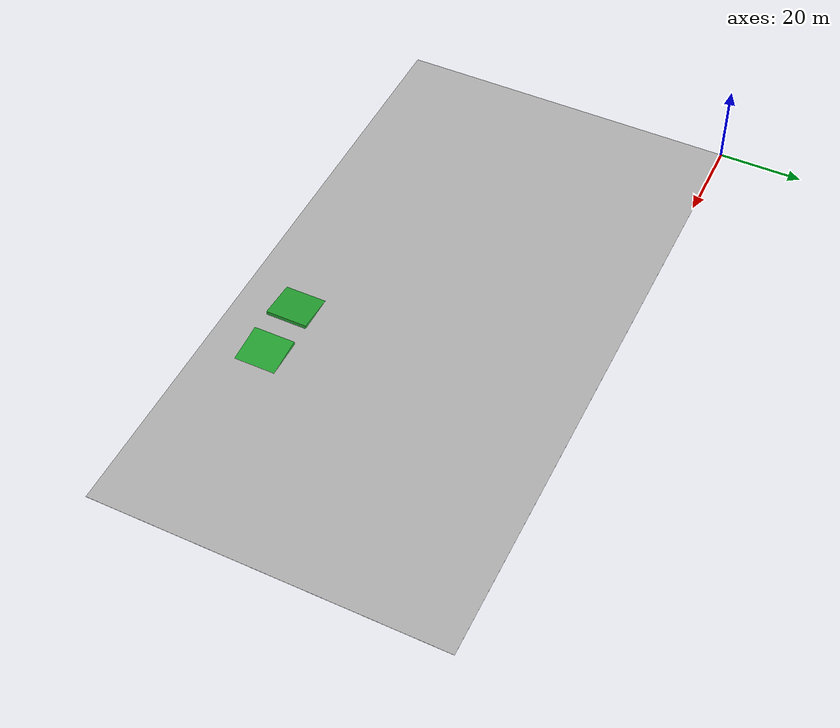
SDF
<sdf version="1.5">
 <world name="default">
  <model name="ground">
   <pose>75 -41.8 0 0 0 1.57</pose>
   <static>1</static>
   <link name="ground">
    <collision name="ground_coll"><geometry><box><size>83.6 150 0.05</size></box></geometry></collision>
    <visual name="ground_vis">
     <geometry><box><size>83.6 150 0.05</size></box></geometry>
     <material><script><uri>./course.material</uri><name>course</name></script></material>
    </visual>
   </link>
  </model>
  <include><uri>model://sun</uri></include>
  <model name="ground">
   <pose>75 -41.8 0 0 0 1.57</pose>
   <static>1</static>
   <link name="ground">
    <collision name="ground_coll"><geometry><box><size>83.6 150 0.05</size></box></geometry></collision>
    <visual name="ground_vis">
     <geometry><box><size>83.6 150 0.05</size></box></geometry>
     <material><script><uri>./course.material</uri><name>course</name></script></material>
    </visual>
   </link>
  </model>
  <model name="up_road">
   <pose>87.5 -70.0 -4.55 0.0 -0.1 0.0</pose>
   <static>1</static>
   <link name="link">
    <collision name="collision"><geometry><box><size>10 10 10</size></box></geometry></collision>
    <visual name="visual">
     <geometry><box><size>10 10 10</size></box></geometry>
     <material>
      <script><uri>file://media/materials/scripts/gazebo.material</uri><name>Gazebo/Green</name></script>
     </material>
    </visual>
   </link>
  </model>
  <model name="down_road">
   <pose>101.5 -70.0 -4.55 0 0.1 0</pose>
   <static>1</static>
   <link name="link">
    <collision name="collision"><geometry><box><size>10 10 10</size></box></geometry></collision>
    <visual name="visual">
     <geometry><box><size>10 10 10</size></box></geometry>
     <material>
      <script><uri>file://media/materials/scripts/gazebo.material</uri><name>Gazebo/Green</name></script>
     </material>
    </visual>
   </link>
  </model>
  <model name="up_road">
   <pose>87.5 -70.0 -4.55 0.0 -0.1 0.0</pose>
   <static>1</static>
   <link name="link">
    <collision name="collision"><geometry><box><size>10 10 10</size></box></geometry></collision>
    <visual name="visual">
     <geometry><box><size>10 10 10</size></box></geometry>
     <material>
      <script><uri>file://media/materials/scripts/gazebo.material</uri><name>Gazebo/Green</name></script>
     </material>
    </visual>
   </link>
  </model>
  <model name="down_road">
   <pose>101.5 -70.0 -4.55 0 0.1 0</pose>
   <static>1</static>
   <link name="link">
    <collision name="collision"><geometry><box><size>10 10 10</size></box></geometry></collision>
    <visual name="visual">
     <geometry><box><size>10 10 10</size></box></geometry>
     <material>
      <script><uri>file://media/materials/scripts/gazebo.material</uri><name>Gazebo/Green</name></script>
     </material>
    </visual>
   </link>
  </model>
 </world>
</sdf>
